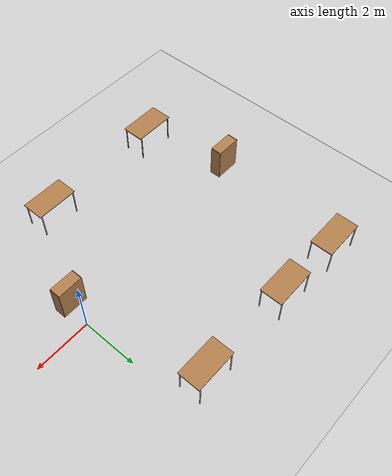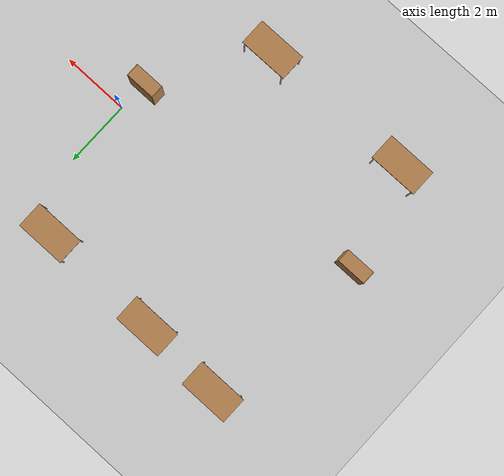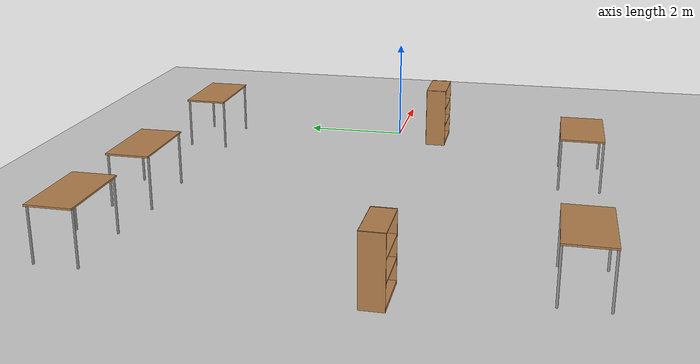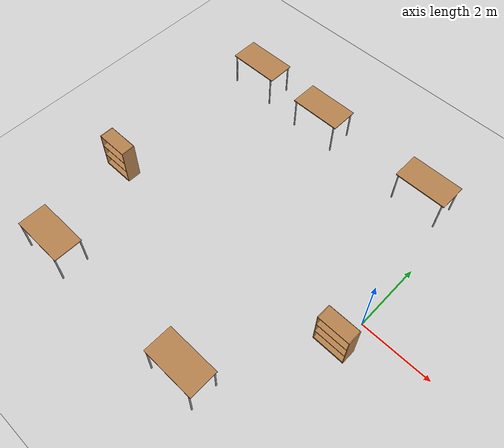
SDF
<sdf version="1.6">
 <world name="default">
  <model name="ground_plane">
   <static>1</static>
   <link name="link">
    <collision name="collision">
     <geometry><plane><normal>0 0 1</normal><size>100 100</size></plane></geometry>
     <surface>
      <contact><collide_bitmask>65535</collide_bitmask></contact>
      <friction><ode><mu>100</mu><mu2>50</mu2></ode></friction>
     </surface>
    </collision>
    <visual name="visual">
     <cast_shadows>0</cast_shadows>
     <geometry><plane><normal>0 0 1</normal><size>100 100</size></plane></geometry>
     <material>
      <script><uri>file://media/materials/scripts/gazebo.material</uri><name>Gazebo/Grey</name></script>
     </material>
    </visual>
   </link>
  </model>
  <model name="table">
   <static>1</static>
   <link name="link">
    <collision name="surface">
     <pose>0 0 1 0 -0 0</pose>
     <geometry><box><size>1.5 0.8 0.03</size></box></geometry>
     <surface><friction><ode><mu>0.6</mu><mu2>0.6</mu2></ode></friction></surface>
    </collision>
    <visual name="visual1">
     <pose>0 0 1 0 -0 0</pose>
     <geometry><box><size>1.5 0.8 0.03</size></box></geometry>
     <material>
      <script><uri>file://media/materials/scripts/gazebo.material</uri><name>Gazebo/Wood</name></script>
     </material>
    </visual>
    <collision name="front_left_leg">
     <pose>0.68 0.38 0.5 0 -0 0</pose>
     <geometry><cylinder><radius>0.02</radius><length>1</length></cylinder></geometry>
    </collision>
    <visual name="front_left_leg">
     <pose>0.68 0.38 0.5 0 -0 0</pose>
     <geometry><cylinder><radius>0.02</radius><length>1</length></cylinder></geometry>
     <material>
      <script><uri>file://media/materials/scripts/gazebo.material</uri><name>Gazebo/Grey</name></script>
     </material>
    </visual>
    <collision name="front_right_leg">
     <pose>0.68 -0.38 0.5 0 -0 0</pose>
     <geometry><cylinder><radius>0.02</radius><length>1</length></cylinder></geometry>
    </collision>
    <visual name="front_right_leg">
     <pose>0.68 -0.38 0.5 0 -0 0</pose>
     <geometry><cylinder><radius>0.02</radius><length>1</length></cylinder></geometry>
     <material>
      <script><uri>file://media/materials/scripts/gazebo.material</uri><name>Gazebo/Grey</name></script>
     </material>
    </visual>
    <collision name="back_right_leg">
     <pose>-0.68 -0.38 0.5 0 -0 0</pose>
     <geometry><cylinder><radius>0.02</radius><length>1</length></cylinder></geometry>
    </collision>
    <visual name="back_right_leg">
     <pose>-0.68 -0.38 0.5 0 -0 0</pose>
     <geometry><cylinder><radius>0.02</radius><length>1</length></cylinder></geometry>
     <material>
      <script><uri>file://media/materials/scripts/gazebo.material</uri><name>Gazebo/Grey</name></script>
     </material>
    </visual>
    <collision name="back_left_leg">
     <pose>-0.68 0.38 0.5 0 -0 0</pose>
     <geometry><cylinder><radius>0.02</radius><length>1</length></cylinder></geometry>
    </collision>
    <visual name="back_left_leg">
     <pose>-0.68 0.38 0.5 0 -0 0</pose>
     <geometry><cylinder><radius>0.02</radius><length>1</length></cylinder></geometry>
     <material>
      <script><uri>file://media/materials/scripts/gazebo.material</uri><name>Gazebo/Grey</name></script>
     </material>
    </visual>
   </link>
   <pose>-7.14968 4.04593 0 0 -0 0</pose>
  </model>
  <model name="table_0">
   <static>1</static>
   <link name="link">
    <collision name="surface">
     <pose>0 0 1 0 -0 0</pose>
     <geometry><box><size>1.5 0.8 0.03</size></box></geometry>
     <surface><friction><ode><mu>0.6</mu><mu2>0.6</mu2></ode></friction></surface>
    </collision>
    <visual name="visual1">
     <pose>0 0 1 0 -0 0</pose>
     <geometry><box><size>1.5 0.8 0.03</size></box></geometry>
     <material>
      <script><uri>file://media/materials/scripts/gazebo.material</uri><name>Gazebo/Wood</name></script>
     </material>
    </visual>
    <collision name="front_left_leg">
     <pose>0.68 0.38 0.5 0 -0 0</pose>
     <geometry><cylinder><radius>0.02</radius><length>1</length></cylinder></geometry>
    </collision>
    <visual name="front_left_leg">
     <pose>0.68 0.38 0.5 0 -0 0</pose>
     <geometry><cylinder><radius>0.02</radius><length>1</length></cylinder></geometry>
     <material>
      <script><uri>file://media/materials/scripts/gazebo.material</uri><name>Gazebo/Grey</name></script>
     </material>
    </visual>
    <collision name="front_right_leg">
     <pose>0.68 -0.38 0.5 0 -0 0</pose>
     <geometry><cylinder><radius>0.02</radius><length>1</length></cylinder></geometry>
    </collision>
    <visual name="front_right_leg">
     <pose>0.68 -0.38 0.5 0 -0 0</pose>
     <geometry><cylinder><radius>0.02</radius><length>1</length></cylinder></geometry>
     <material>
      <script><uri>file://media/materials/scripts/gazebo.material</uri><name>Gazebo/Grey</name></script>
     </material>
    </visual>
    <collision name="back_right_leg">
     <pose>-0.68 -0.38 0.5 0 -0 0</pose>
     <geometry><cylinder><radius>0.02</radius><length>1</length></cylinder></geometry>
    </collision>
    <visual name="back_right_leg">
     <pose>-0.68 -0.38 0.5 0 -0 0</pose>
     <geometry><cylinder><radius>0.02</radius><length>1</length></cylinder></geometry>
     <material>
      <script><uri>file://media/materials/scripts/gazebo.material</uri><name>Gazebo/Grey</name></script>
     </material>
    </visual>
    <collision name="back_left_leg">
     <pose>-0.68 0.38 0.5 0 -0 0</pose>
     <geometry><cylinder><radius>0.02</radius><length>1</length></cylinder></geometry>
    </collision>
    <visual name="back_left_leg">
     <pose>-0.68 0.38 0.5 0 -0 0</pose>
     <geometry><cylinder><radius>0.02</radius><length>1</length></cylinder></geometry>
     <material>
      <script><uri>file://media/materials/scripts/gazebo.material</uri><name>Gazebo/Grey</name></script>
     </material>
    </visual>
   </link>
   <pose>-4.68304 3.94078 0 0 -0 0</pose>
  </model>
  <model name="table_1">
   <static>1</static>
   <link name="link">
    <collision name="surface">
     <pose>0 0 1 0 -0 0</pose>
     <geometry><box><size>1.5 0.8 0.03</size></box></geometry>
     <surface><friction><ode><mu>0.6</mu><mu2>0.6</mu2></ode></friction></surface>
    </collision>
    <visual name="visual1">
     <pose>0 0 1 0 -0 0</pose>
     <geometry><box><size>1.5 0.8 0.03</size></box></geometry>
     <material>
      <script><uri>file://media/materials/scripts/gazebo.material</uri><name>Gazebo/Wood</name></script>
     </material>
    </visual>
    <collision name="front_left_leg">
     <pose>0.68 0.38 0.5 0 -0 0</pose>
     <geometry><cylinder><radius>0.02</radius><length>1</length></cylinder></geometry>
    </collision>
    <visual name="front_left_leg">
     <pose>0.68 0.38 0.5 0 -0 0</pose>
     <geometry><cylinder><radius>0.02</radius><length>1</length></cylinder></geometry>
     <material>
      <script><uri>file://media/materials/scripts/gazebo.material</uri><name>Gazebo/Grey</name></script>
     </material>
    </visual>
    <collision name="front_right_leg">
     <pose>0.68 -0.38 0.5 0 -0 0</pose>
     <geometry><cylinder><radius>0.02</radius><length>1</length></cylinder></geometry>
    </collision>
    <visual name="front_right_leg">
     <pose>0.68 -0.38 0.5 0 -0 0</pose>
     <geometry><cylinder><radius>0.02</radius><length>1</length></cylinder></geometry>
     <material>
      <script><uri>file://media/materials/scripts/gazebo.material</uri><name>Gazebo/Grey</name></script>
     </material>
    </visual>
    <collision name="back_right_leg">
     <pose>-0.68 -0.38 0.5 0 -0 0</pose>
     <geometry><cylinder><radius>0.02</radius><length>1</length></cylinder></geometry>
    </collision>
    <visual name="back_right_leg">
     <pose>-0.68 -0.38 0.5 0 -0 0</pose>
     <geometry><cylinder><radius>0.02</radius><length>1</length></cylinder></geometry>
     <material>
      <script><uri>file://media/materials/scripts/gazebo.material</uri><name>Gazebo/Grey</name></script>
     </material>
    </visual>
    <collision name="back_left_leg">
     <pose>-0.68 0.38 0.5 0 -0 0</pose>
     <geometry><cylinder><radius>0.02</radius><length>1</length></cylinder></geometry>
    </collision>
    <visual name="back_left_leg">
     <pose>-0.68 0.38 0.5 0 -0 0</pose>
     <geometry><cylinder><radius>0.02</radius><length>1</length></cylinder></geometry>
     <material>
      <script><uri>file://media/materials/scripts/gazebo.material</uri><name>Gazebo/Grey</name></script>
     </material>
    </visual>
   </link>
   <pose>-1.06489 3.86559 0 0 -0 0</pose>
  </model>
  <model name="table_3">
   <static>1</static>
   <link name="link">
    <collision name="surface">
     <pose>0 0 1 0 -0 0</pose>
     <geometry><box><size>1.5 0.8 0.03</size></box></geometry>
     <surface><friction><ode><mu>0.6</mu><mu2>0.6</mu2></ode></friction></surface>
    </collision>
    <visual name="visual1">
     <pose>0 0 1 0 -0 0</pose>
     <geometry><box><size>1.5 0.8 0.03</size></box></geometry>
     <material>
      <script><uri>file://media/materials/scripts/gazebo.material</uri><name>Gazebo/Wood</name></script>
     </material>
    </visual>
    <collision name="front_left_leg">
     <pose>0.68 0.38 0.5 0 -0 0</pose>
     <geometry><cylinder><radius>0.02</radius><length>1</length></cylinder></geometry>
    </collision>
    <visual name="front_left_leg">
     <pose>0.68 0.38 0.5 0 -0 0</pose>
     <geometry><cylinder><radius>0.02</radius><length>1</length></cylinder></geometry>
     <material>
      <script><uri>file://media/materials/scripts/gazebo.material</uri><name>Gazebo/Grey</name></script>
     </material>
    </visual>
    <collision name="front_right_leg">
     <pose>0.68 -0.38 0.5 0 -0 0</pose>
     <geometry><cylinder><radius>0.02</radius><length>1</length></cylinder></geometry>
    </collision>
    <visual name="front_right_leg">
     <pose>0.68 -0.38 0.5 0 -0 0</pose>
     <geometry><cylinder><radius>0.02</radius><length>1</length></cylinder></geometry>
     <material>
      <script><uri>file://media/materials/scripts/gazebo.material</uri><name>Gazebo/Grey</name></script>
     </material>
    </visual>
    <collision name="back_right_leg">
     <pose>-0.68 -0.38 0.5 0 -0 0</pose>
     <geometry><cylinder><radius>0.02</radius><length>1</length></cylinder></geometry>
    </collision>
    <visual name="back_right_leg">
     <pose>-0.68 -0.38 0.5 0 -0 0</pose>
     <geometry><cylinder><radius>0.02</radius><length>1</length></cylinder></geometry>
     <material>
      <script><uri>file://media/materials/scripts/gazebo.material</uri><name>Gazebo/Grey</name></script>
     </material>
    </visual>
    <collision name="back_left_leg">
     <pose>-0.68 0.38 0.5 0 -0 0</pose>
     <geometry><cylinder><radius>0.02</radius><length>1</length></cylinder></geometry>
    </collision>
    <visual name="back_left_leg">
     <pose>-0.68 0.38 0.5 0 -0 0</pose>
     <geometry><cylinder><radius>0.02</radius><length>1</length></cylinder></geometry>
     <material>
      <script><uri>file://media/materials/scripts/gazebo.material</uri><name>Gazebo/Grey</name></script>
     </material>
    </visual>
   </link>
   <pose>-6.83933 -3.88191 0 0 -0 0</pose>
  </model>
  <model name="table_4">
   <static>1</static>
   <link name="link">
    <collision name="surface">
     <pose>0 0 1 0 -0 0</pose>
     <geometry><box><size>1.5 0.8 0.03</size></box></geometry>
     <surface><friction><ode><mu>0.6</mu><mu2>0.6</mu2></ode></friction></surface>
    </collision>
    <visual name="visual1">
     <pose>0 0 1 0 -0 0</pose>
     <geometry><box><size>1.5 0.8 0.03</size></box></geometry>
     <material>
      <script><uri>file://media/materials/scripts/gazebo.material</uri><name>Gazebo/Wood</name></script>
     </material>
    </visual>
    <collision name="front_left_leg">
     <pose>0.68 0.38 0.5 0 -0 0</pose>
     <geometry><cylinder><radius>0.02</radius><length>1</length></cylinder></geometry>
    </collision>
    <visual name="front_left_leg">
     <pose>0.68 0.38 0.5 0 -0 0</pose>
     <geometry><cylinder><radius>0.02</radius><length>1</length></cylinder></geometry>
     <material>
      <script><uri>file://media/materials/scripts/gazebo.material</uri><name>Gazebo/Grey</name></script>
     </material>
    </visual>
    <collision name="front_right_leg">
     <pose>0.68 -0.38 0.5 0 -0 0</pose>
     <geometry><cylinder><radius>0.02</radius><length>1</length></cylinder></geometry>
    </collision>
    <visual name="front_right_leg">
     <pose>0.68 -0.38 0.5 0 -0 0</pose>
     <geometry><cylinder><radius>0.02</radius><length>1</length></cylinder></geometry>
     <material>
      <script><uri>file://media/materials/scripts/gazebo.material</uri><name>Gazebo/Grey</name></script>
     </material>
    </visual>
    <collision name="back_right_leg">
     <pose>-0.68 -0.38 0.5 0 -0 0</pose>
     <geometry><cylinder><radius>0.02</radius><length>1</length></cylinder></geometry>
    </collision>
    <visual name="back_right_leg">
     <pose>-0.68 -0.38 0.5 0 -0 0</pose>
     <geometry><cylinder><radius>0.02</radius><length>1</length></cylinder></geometry>
     <material>
      <script><uri>file://media/materials/scripts/gazebo.material</uri><name>Gazebo/Grey</name></script>
     </material>
    </visual>
    <collision name="back_left_leg">
     <pose>-0.68 0.38 0.5 0 -0 0</pose>
     <geometry><cylinder><radius>0.02</radius><length>1</length></cylinder></geometry>
    </collision>
    <visual name="back_left_leg">
     <pose>-0.68 0.38 0.5 0 -0 0</pose>
     <geometry><cylinder><radius>0.02</radius><length>1</length></cylinder></geometry>
     <material>
      <script><uri>file://media/materials/scripts/gazebo.material</uri><name>Gazebo/Grey</name></script>
     </material>
    </visual>
   </link>
   <pose>-2.13659 -3.86124 0 0 -0 0</pose>
  </model>
  <model name="bookshelf_0">
   <static>1</static>
   <link name="link">
    <inertial><mass>1</mass></inertial>
    <collision name="back">
     <pose>0 0.005 0.6 0 -0 0</pose>
     <geometry><box><size>0.9 0.01 1.2</size></box></geometry>
    </collision>
    <visual name="visual1">
     <pose>0 0.005 0.6 0 -0 0</pose>
     <geometry><box><size>0.9 0.01 1.2</size></box></geometry>
     <material>
      <script><uri>file://media/materials/scripts/gazebo.material</uri><name>Gazebo/Wood</name></script>
     </material>
    </visual>
    <collision name="left_side">
     <pose>0.45 -0.195 0.6 0 -0 0</pose>
     <geometry><box><size>0.02 0.4 1.2</size></box></geometry>
    </collision>
    <visual name="visual2">
     <pose>0.45 -0.195 0.6 0 -0 0</pose>
     <geometry><box><size>0.02 0.4 1.2</size></box></geometry>
     <material>
      <script><uri>file://media/materials/scripts/gazebo.material</uri><name>Gazebo/Wood</name></script>
     </material>
    </visual>
    <collision name="right_side">
     <pose>-0.45 -0.195 0.6 0 -0 0</pose>
     <geometry><box><size>0.02 0.4 1.2</size></box></geometry>
    </collision>
    <visual name="visual3">
     <pose>-0.45 -0.195 0.6 0 -0 0</pose>
     <geometry><box><size>0.02 0.4 1.2</size></box></geometry>
     <material>
      <script><uri>file://media/materials/scripts/gazebo.material</uri><name>Gazebo/Wood</name></script>
     </material>
    </visual>
    <collision name="bottom">
     <pose>0 -0.195 0.03 0 -0 0</pose>
     <geometry><box><size>0.88 0.4 0.06</size></box></geometry>
    </collision>
    <visual name="visual4">
     <pose>0 -0.195 0.03 0 -0 0</pose>
     <geometry><box><size>0.88 0.4 0.06</size></box></geometry>
     <material>
      <script><uri>file://media/materials/scripts/gazebo.material</uri><name>Gazebo/Wood</name></script>
     </material>
    </visual>
    <collision name="top">
     <pose>0 -0.195 1.19 0 -0 0</pose>
     <geometry><box><size>0.88 0.4 0.02</size></box></geometry>
    </collision>
    <visual name="visual5">
     <pose>0 -0.195 1.19 0 -0 0</pose>
     <geometry><box><size>0.88 0.4 0.02</size></box></geometry>
     <material>
      <script><uri>file://media/materials/scripts/gazebo.material</uri><name>Gazebo/Wood</name></script>
     </material>
    </visual>
    <collision name="low_shelf">
     <pose>0 -0.195 0.43 0 -0 0</pose>
     <geometry><box><size>0.88 0.4 0.02</size></box></geometry>
    </collision>
    <visual name="visual6">
     <pose>0 -0.195 0.43 0 -0 0</pose>
     <geometry><box><size>0.88 0.4 0.02</size></box></geometry>
     <material>
      <script><uri>file://media/materials/scripts/gazebo.material</uri><name>Gazebo/Wood</name></script>
     </material>
    </visual>
    <collision name="high_shelf">
     <pose>0 -0.195 0.8 0 -0 0</pose>
     <geometry><box><size>0.88 0.4 0.02</size></box></geometry>
    </collision>
    <visual name="visual7">
     <pose>0 -0.195 0.8 0 -0 0</pose>
     <geometry><box><size>0.88 0.4 0.02</size></box></geometry>
     <material>
      <script><uri>file://media/materials/scripts/gazebo.material</uri><name>Gazebo/Wood</name></script>
     </material>
    </visual>
   </link>
   <pose>-0.177286 -0.679662 0 0 -0 0</pose>
  </model>
  <model name="bookshelf_1">
   <static>1</static>
   <link name="link">
    <inertial><mass>1</mass></inertial>
    <collision name="back">
     <pose>0 0.005 0.6 0 -0 0</pose>
     <geometry><box><size>0.9 0.01 1.2</size></box></geometry>
    </collision>
    <visual name="visual1">
     <pose>0 0.005 0.6 0 -0 0</pose>
     <geometry><box><size>0.9 0.01 1.2</size></box></geometry>
     <material>
      <script><uri>file://media/materials/scripts/gazebo.material</uri><name>Gazebo/Wood</name></script>
     </material>
    </visual>
    <collision name="left_side">
     <pose>0.45 -0.195 0.6 0 -0 0</pose>
     <geometry><box><size>0.02 0.4 1.2</size></box></geometry>
    </collision>
    <visual name="visual2">
     <pose>0.45 -0.195 0.6 0 -0 0</pose>
     <geometry><box><size>0.02 0.4 1.2</size></box></geometry>
     <material>
      <script><uri>file://media/materials/scripts/gazebo.material</uri><name>Gazebo/Wood</name></script>
     </material>
    </visual>
    <collision name="right_side">
     <pose>-0.45 -0.195 0.6 0 -0 0</pose>
     <geometry><box><size>0.02 0.4 1.2</size></box></geometry>
    </collision>
    <visual name="visual3">
     <pose>-0.45 -0.195 0.6 0 -0 0</pose>
     <geometry><box><size>0.02 0.4 1.2</size></box></geometry>
     <material>
      <script><uri>file://media/materials/scripts/gazebo.material</uri><name>Gazebo/Wood</name></script>
     </material>
    </visual>
    <collision name="bottom">
     <pose>0 -0.195 0.03 0 -0 0</pose>
     <geometry><box><size>0.88 0.4 0.06</size></box></geometry>
    </collision>
    <visual name="visual4">
     <pose>0 -0.195 0.03 0 -0 0</pose>
     <geometry><box><size>0.88 0.4 0.06</size></box></geometry>
     <material>
      <script><uri>file://media/materials/scripts/gazebo.material</uri><name>Gazebo/Wood</name></script>
     </material>
    </visual>
    <collision name="top">
     <pose>0 -0.195 1.19 0 -0 0</pose>
     <geometry><box><size>0.88 0.4 0.02</size></box></geometry>
    </collision>
    <visual name="visual5">
     <pose>0 -0.195 1.19 0 -0 0</pose>
     <geometry><box><size>0.88 0.4 0.02</size></box></geometry>
     <material>
      <script><uri>file://media/materials/scripts/gazebo.material</uri><name>Gazebo/Wood</name></script>
     </material>
    </visual>
    <collision name="low_shelf">
     <pose>0 -0.195 0.43 0 -0 0</pose>
     <geometry><box><size>0.88 0.4 0.02</size></box></geometry>
    </collision>
    <visual name="visual6">
     <pose>0 -0.195 0.43 0 -0 0</pose>
     <geometry><box><size>0.88 0.4 0.02</size></box></geometry>
     <material>
      <script><uri>file://media/materials/scripts/gazebo.material</uri><name>Gazebo/Wood</name></script>
     </material>
    </visual>
    <collision name="high_shelf">
     <pose>0 -0.195 0.8 0 -0 0</pose>
     <geometry><box><size>0.88 0.4 0.02</size></box></geometry>
    </collision>
    <visual name="visual7">
     <pose>0 -0.195 0.8 0 -0 0</pose>
     <geometry><box><size>0.88 0.4 0.02</size></box></geometry>
     <material>
      <script><uri>file://media/materials/scripts/gazebo.material</uri><name>Gazebo/Wood</name></script>
     </material>
    </visual>
   </link>
   <pose>-7.73273 -0.786212 0 0 -0 0</pose>
  </model>
 </world>
</sdf>
